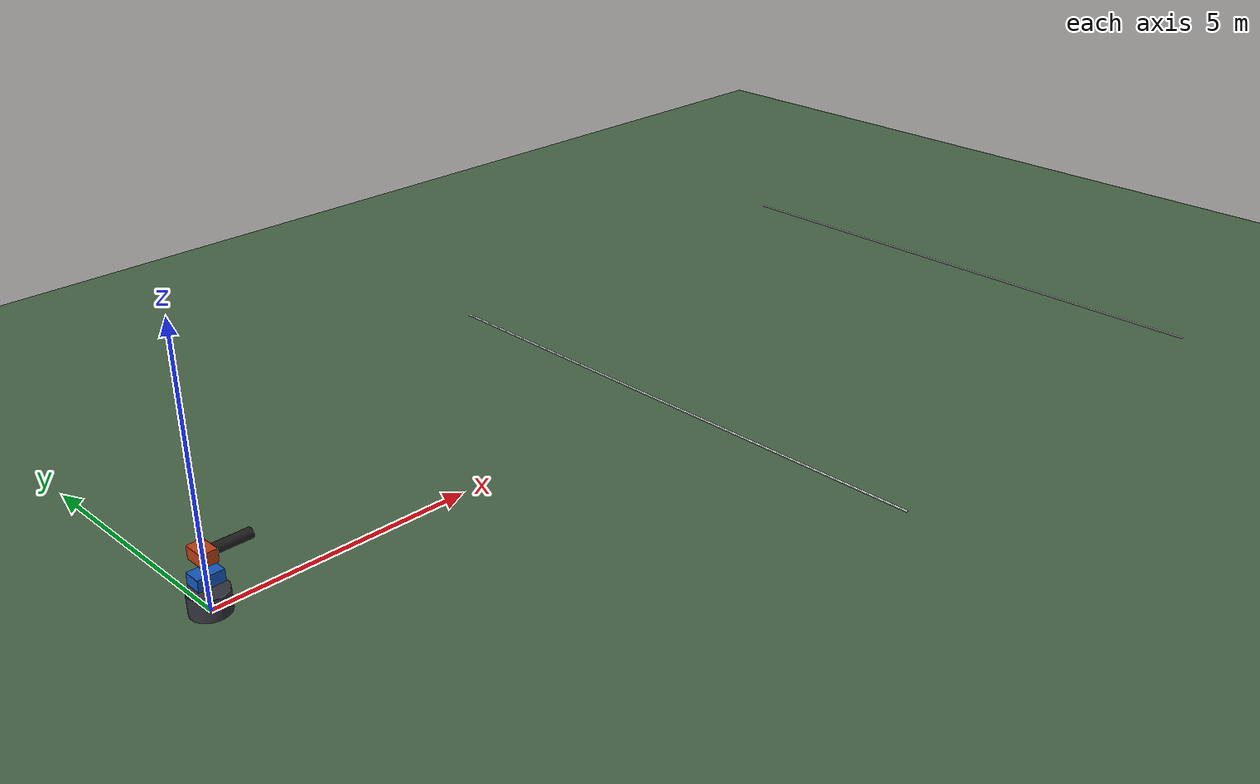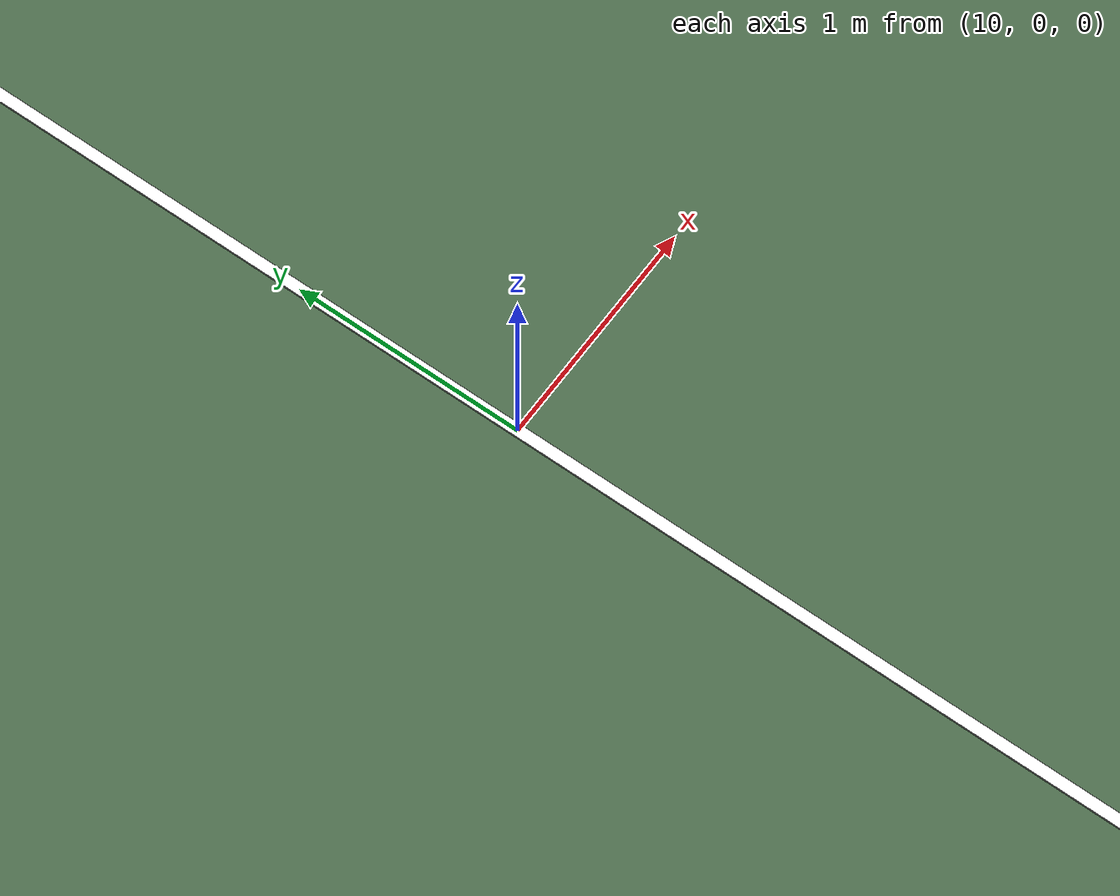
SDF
<?xml version="1.0"?>
<sdf version="1.9">
  <world name="launcher_world">
    <gravity>0 0 -9.81</gravity>

    <physics name="one_millisecond" type="ignored">
      <max_step_size>0.001</max_step_size>
      <real_time_factor>1.0</real_time_factor>
    </physics>

    <plugin filename="gz-sim-physics-system" name="gz::sim::systems::Physics"/>
    <plugin filename="gz-sim-user-commands-system" name="gz::sim::systems::UserCommands"/>
    <plugin filename="gz-sim-scene-broadcaster-system" name="gz::sim::systems::SceneBroadcaster"/>
    <plugin filename="gz-sim-apply-link-wrench-system" name="gz::sim::systems::ApplyLinkWrench"/>

    <light name="sun" type="directional">
      <cast_shadows>true</cast_shadows>
      <pose>0 0 10 0 0 0</pose>
      <diffuse>0.9 0.9 0.9 1</diffuse>
      <specular>0.2 0.2 0.2 1</specular>
      <direction>-0.5 0.2 -0.9</direction>
    </light>

    <!-- Ground top is exactly z=0. -->
    <model name="ground_plane">
      <static>true</static>
      <pose>0 0 -0.05 0 0 0</pose>
      <link name="ground_link">
        <collision name="ground_collision">
          <geometry><box><size>80 80 0.10</size></box></geometry>
        </collision>
        <visual name="ground_visual">
          <geometry><box><size>80 80 0.10</size></box></geometry>
          <material><ambient>0.22 0.30 0.22 1</ambient><diffuse>0.28 0.40 0.28 1</diffuse></material>
        </visual>
      </link>
    </model>

    <model name="range_mark_10m">
      <static>true</static>
      <pose>10 0 0.005 0 0 0</pose>
      <link name="link">
        <visual name="visual">
          <geometry><box><size>0.05 12 0.01</size></box></geometry>
          <material><ambient>1 1 1 1</ambient><diffuse>1 1 1 1</diffuse></material>
        </visual>
      </link>
    </model>

    <model name="range_mark_20m">
      <static>true</static>
      <pose>20 0 0.005 0 0 0</pose>
      <link name="link">
        <visual name="visual">
          <geometry><box><size>0.05 12 0.01</size></box></geometry>
          <material><ambient>1 1 1 1</ambient><diffuse>1 1 1 1</diffuse></material>
        </visual>
      </link>
    </model>

    <include>
      <uri>model://ball_launcher</uri>
    </include>
  </world>
</sdf>

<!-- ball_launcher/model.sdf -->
<sdf version="1.9">
  <model name="ball_launcher">
    <canonical_link>base_link</canonical_link>

    <link name="base_link">
      <pose>0 0 0.20 0 0 0</pose>
      <inertial>
        <mass>20.0</mass>
        <inertia>
          <ixx>0.40</ixx><iyy>0.40</iyy><izz>0.40</izz>
          <ixy>0</ixy><ixz>0</ixz><iyz>0</iyz>
        </inertia>
      </inertial>
      <visual name="base_visual">
        <geometry><cylinder><radius>0.35</radius><length>0.40</length></cylinder></geometry>
        <material><ambient>0.15 0.15 0.18 1</ambient><diffuse>0.20 0.20 0.24 1</diffuse></material>
      </visual>
      <collision name="base_collision">
        <geometry><cylinder><radius>0.35</radius><length>0.40</length></cylinder></geometry>
      </collision>
    </link>

    <joint name="world_fixed" type="fixed">
      <parent>world</parent>
      <child>base_link</child>
    </joint>

    <link name="pan_link">
      <pose>0 0 0.63 0 0 0</pose>
      <inertial>
        <mass>4.0</mass>
        <inertia>
          <ixx>0.12</ixx><iyy>0.12</iyy><izz>0.12</izz>
          <ixy>0</ixy><ixz>0</ixz><iyz>0</iyz>
        </inertia>
      </inertial>
      <visual name="pan_visual">
        <geometry><box><size>0.48 0.34 0.22</size></box></geometry>
        <material><ambient>0.05 0.25 0.55 1</ambient><diffuse>0.08 0.35 0.75 1</diffuse></material>
      </visual>
      <collision name="pan_collision">
        <geometry><box><size>0.48 0.34 0.22</size></box></geometry>
      </collision>
    </link>

    <joint name="pan_joint" type="revolute">
      <parent>base_link</parent>
      <child>pan_link</child>
      <axis>
        <xyz>0 0 1</xyz>
        <limit><lower>-3.14159</lower><upper>3.14159</upper><effort>200</effort><velocity>3.0</velocity></limit>
        <dynamics><damping>1.5</damping><friction>0.2</friction></dynamics>
      </axis>
    </joint>

    <link name="tilt_link">
      <pose>0 0 1.05 0 0 0</pose>
      <inertial>
        <mass>3.0</mass>
        <inertia>
          <ixx>0.30</ixx><iyy>0.30</iyy><izz>0.08</izz>
          <ixy>0</ixy><ixz>0</ixz><iyz>0</iyz>
        </inertia>
      </inertial>

      <visual name="tilt_body_visual">
        <geometry><box><size>0.30 0.42 0.24</size></box></geometry>
        <material><ambient>0.55 0.18 0.05 1</ambient><diffuse>0.75 0.25 0.08 1</diffuse></material>
      </visual>
      <collision name="tilt_body_collision">
        <geometry><box><size>0.30 0.42 0.24</size></box></geometry>
      </collision>

      <visual name="barrel_visual">
        <pose>0.425 0 0 0 1.57079632679 0</pose>
        <geometry><cylinder><radius>0.095</radius><length>0.85</length></cylinder></geometry>
        <material><ambient>0.08 0.08 0.08 1</ambient><diffuse>0.12 0.12 0.12 1</diffuse></material>
      </visual>
      <collision name="barrel_collision">
        <pose>0.425 0 0 0 1.57079632679 0</pose>
        <geometry><cylinder><radius>0.095</radius><length>0.85</length></cylinder></geometry>
      </collision>
    </link>

    <joint name="tilt_joint" type="revolute">
      <parent>pan_link</parent>
      <child>tilt_link</child>
      <axis>
        <xyz>0 -1 0</xyz>
        <limit><lower>-0.10</lower><upper>1.31</upper><effort>180</effort><velocity>2.5</velocity></limit>
        <dynamics><damping>1.2</damping><friction>0.15</friction></dynamics>
      </axis>
    </joint>

    <plugin filename="gz-sim-joint-position-controller-system"
            name="gz::sim::systems::JointPositionController">
      <joint_name>pan_joint</joint_name>
      <topic>/pan_cmd</topic>
      <p_gain>65.0</p_gain>
      <i_gain>0.2</i_gain>
      <d_gain>8.0</d_gain>
      <cmd_max>3.14159</cmd_max>
      <cmd_min>-3.14159</cmd_min>
    </plugin>

    <plugin filename="gz-sim-joint-position-controller-system"
            name="gz::sim::systems::JointPositionController">
      <joint_name>tilt_joint</joint_name>
      <topic>/tilt_cmd</topic>
      <p_gain>70.0</p_gain>
      <i_gain>0.2</i_gain>
      <d_gain>9.0</d_gain>
      <cmd_max>1.31</cmd_max>
      <cmd_min>-0.10</cmd_min>
    </plugin>
  </model>
</sdf>
